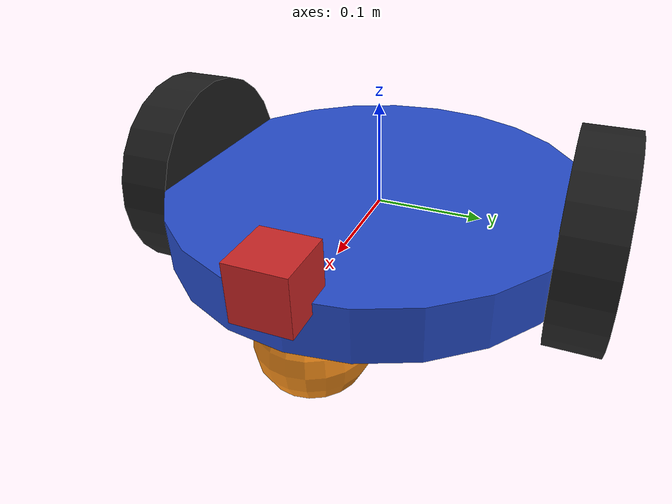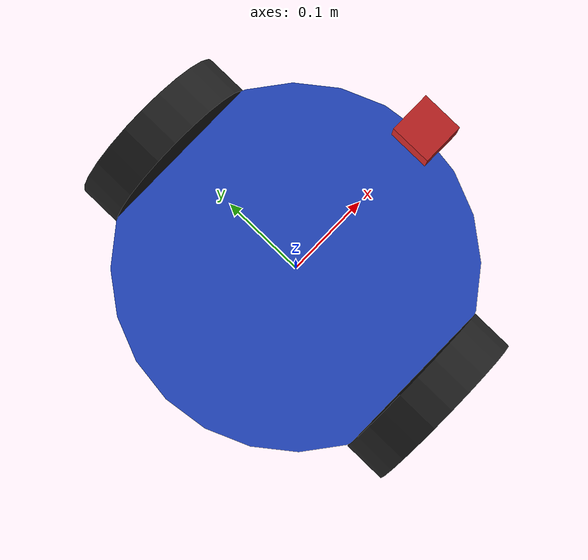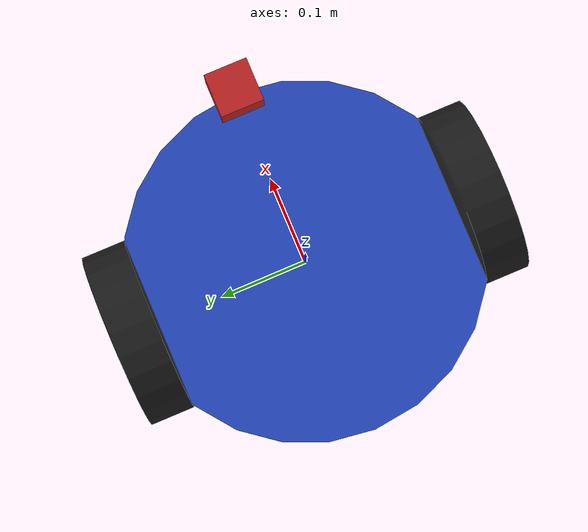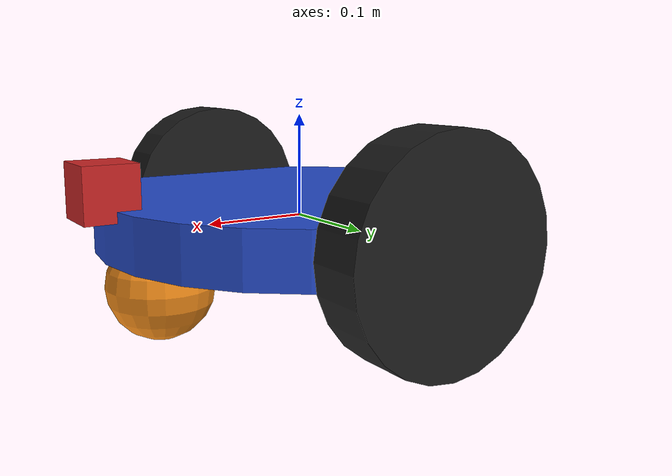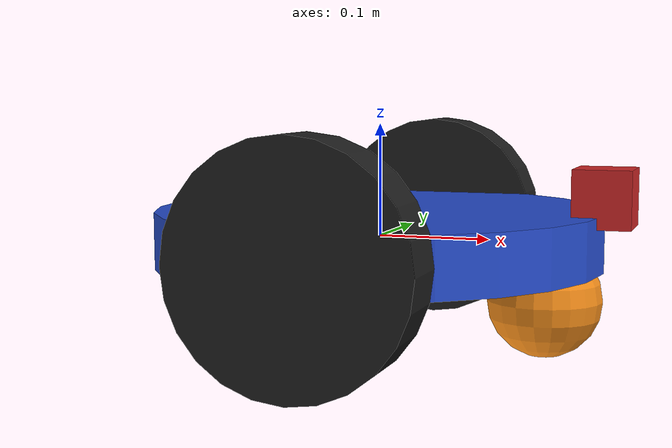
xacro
<?xml version='1.0'?>

<robot name="robot" xmlns:xacro="http://www.ros.org/wiki/xacro">

  <xacro:include filename="$(find auto_robot_description)/urdf/auto_robot.gazebo" />
  <xacro:include filename="$(find auto_robot_description)/urdf/materials.xacro" />
  <xacro:include filename="$(find auto_robot_description)/urdf/xacro_variables.xacro" />

<!--Links Declaration-->

  <link name='chassis'>
    <pose>0 0 0.1 0 0 0</pose>

    <inertial>
      <mass value="10.0"/>
      <origin xyz="0.0 0 0.1" rpy=" 0 0 0"/>

      <cylinder_inertia m="10" r="${chasis_cylinder_radius}" h="${chasis_cylinder_height}"/>

      <inertia
          ixx="0.5" ixy="0" ixz="0"
          iyy="1.0" iyz="0"
          izz="0.1"
      />
    </inertial>

    <collision name='collision'>
      <geometry>
        <cylinder radius="${chasis_cylinder_radius}" length="${chasis_cylinder_height}"/>
      </geometry>
    </collision>

    <visual name='chassis_visual'>
      <origin xyz="0 0 0" rpy=" 0 0 0"/>
      <geometry>
        <cylinder radius="${chasis_cylinder_radius}" length="${chasis_cylinder_height}"/>
      </geometry>
      <material name="blue"/>
    </visual>

    <collision name='caster_collision'>
      <origin xyz="${chasis_caster_x} ${chasis_caster_y} ${chasis_caster_z}" rpy=" ${chasis_caster_r} ${chasis_caster_p} ${chasis_caster_ya}"/>
      <geometry>
        <sphere radius="${chasis_caster_radius}"/>
      </geometry>
      <surface>
        <friction>
          <ode>
            <mu>0</mu>
            <mu2>0</mu2>
            <slip1>1.0</slip1>
            <slip2>1.0</slip2>
          </ode>
        </friction>
      </surface>
    </collision>

    <visual name='caster_visual'>
      <origin xyz="${chasis_caster_x} ${chasis_caster_y} ${chasis_caster_z}" rpy=" ${chasis_caster_r} ${chasis_caster_p} ${chasis_caster_ya}"/>
      <geometry>
        <sphere radius="${chasis_caster_radius}"/>
      </geometry>
      <material name="orange"/>
    </visual>

    <collision name='caster_collision2'>
      <origin xyz="${chasis_caster2_x} ${chasis_caster2_y} ${chasis_caster2_z}" rpy=" ${chasis_caster2_r} ${chasis_caster2_p} ${chasis_caster2_ya}"/>
      <geometry>
        <sphere radius="${chasis_caster_radius}"/>
      </geometry>
      <surface>
        <friction>
          <ode>
            <mu>0</mu>
            <mu2>0</mu2>
            <slip1>1.0</slip1>
            <slip2>1.0</slip2>
          </ode>
        </friction>
      </surface>
    </collision>

    <visual name='caster2_visual'>
      <origin xyz="${chasis_caster2_x} ${chasis_caster2_y} ${chasis_caster2_z}" rpy=" ${chasis_caster2_r} ${chasis_caster2_p} ${chasis_caster2_ya}"/>
      <geometry>
        <sphere radius="${chasis_caster_radius}"/>
      </geometry>
      <material name="orange"/>
    </visual>
  </link>

  <link name="left_wheel">
    <!--origin xyz="0.1 0.13 0.1" rpy="0 1.5707 1.5707"/-->
    <collision name="collision">
      <origin xyz="${wheel_x} ${wheel_y} ${wheel_z}" rpy="${wheel_r} ${wheel_p} ${wheel_ya}"/>
      <geometry>
        <cylinder radius="${wheel_cylinder_radius}" length="${wheel_cylinder_height}"/>
      </geometry>
    </collision>
    <visual name="left_wheel_visual">
      <origin xyz="${wheel_x} ${wheel_y} ${wheel_z}" rpy="${wheel_r} ${wheel_p} ${wheel_ya}"/>
      <geometry>
        <cylinder radius="${wheel_cylinder_radius}" length="${wheel_cylinder_height}"/>
      </geometry>
      <material name="black"/>
    </visual>
    <inertial>
      <origin xyz="${wheel_x} ${wheel_y} ${wheel_z}" rpy="${wheel_r} ${wheel_p} ${wheel_ya}"/>
      <mass value="5"/>
      <cylinder_inertia m="5" r="${wheel_cylinder_radius}" h="${wheel_cylinder_height}"/>
      <inertia
        ixx="1.0" ixy="0.0" ixz="0.0"
        iyy="1.0" iyz="0.0"
        izz="1.0"/>
    </inertial>
  </link>

  <link name="right_wheel">
    <collision name="collision">
      <origin xyz="${wheel_x} ${wheel_y} ${wheel_z}" rpy="${wheel_r} ${wheel_p} ${wheel_ya}"/>
      <geometry>
        <cylinder radius="${wheel_cylinder_radius}" length="${wheel_cylinder_height}"/>
      </geometry>
    </collision>
    <visual name="right_wheel_visual">
      <origin xyz="${wheel_x} ${wheel_y} ${wheel_z}" rpy="${wheel_r} ${wheel_p} ${wheel_ya}"/>
      <geometry>
        <cylinder radius="${wheel_cylinder_radius}" length="${wheel_cylinder_height}"/>
      </geometry>
      <material name="black"/>
    </visual>
    <inertial>
      <origin xyz="${wheel_x} ${wheel_y} ${wheel_z}" rpy="${wheel_r} ${wheel_p} ${wheel_ya}"/>
      <mass value="5"/>
      <cylinder_inertia m="5" r="${wheel_cylinder_radius}" h="${wheel_cylinder_height}"/>
      <inertia
        ixx="1.0" ixy="0.0" ixz="0.0"
        iyy="1.0" iyz="0.0"
        izz="1.0"/>
    </inertial>
  </link>

  <!-- Camera -->
  <link name="camera_link">
    <collision>
      <origin xyz="0 0 0" rpy="0 0 0"/>
      <geometry>
    <box size="${camera_link} ${camera_link} ${camera_link}"/>
      </geometry>
    </collision>

    <visual>
      <origin xyz="0 0 0" rpy="0 0 0"/>
      <geometry>
       <box size="${camera_link} ${camera_link} ${camera_link}"/>
      </geometry>
      <material name="red"/>
    </visual>

    <inertial>
      <mass value="1e-5" />
      <origin xyz="0 0 0" rpy="0 0 0"/>
      <inertia ixx="1e-6" ixy="0" ixz="0" iyy="1e-6" iyz="0" izz="1e-6" />
    </inertial>
  </link>

<!--Joint Declaration-->

  <joint type="continuous" name="left_wheel_hinge">
    <origin xyz="${left_wheel_x} ${left_wheel_y} ${left_wheel_z}" rpy="0 0 0"/>
    <child link="left_wheel"/>
    <parent link="chassis"/>
    <axis xyz="0 1 0" rpy="0 0 0"/>
    <limit effort="100" velocity="100"/>
    <joint_properties damping="0.0" friction="0.0"/>
  </joint>

  <joint type="continuous" name="right_wheel_hinge">
    <origin xyz="${right_wheel_x} ${right_wheel_y} ${right_wheel_z}" rpy="0 0 0"/>
    <child link="right_wheel"/>
    <parent link="chassis"/>
    <axis xyz="0 1 0" rpy="0 0 0"/>
    <limit effort="100" velocity="100"/>
    <joint_properties damping="0.0" friction="0.0"/>
  </joint>

  <joint type="fixed" name="camera_joint">
    <axis xyz="0 0.05 0" />
    <origin xyz="0.2 0 0.04" rpy="0 0 0"/>
    <parent link="chassis"/>
    <child link="camera_link"/>
  </joint>

</robot>

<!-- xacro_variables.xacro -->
<robot name="robot" xmlns:xacro="http://www.ros.org/wiki/xacro">

<!--Xacro variable declaration-->
  <xacro:property name="camera_link" value="0.05" />

<!--Dimentions-->

  <!--Chasis_cylinder-->
  <xacro:property name="chasis_cylinder_radius" value="0.2" />
  <xacro:property name="chasis_cylinder_height" value="0.05" />

  <!--Chasis_caster-->
  <xacro:property name="chasis_caster_radius" value="0.05" />

  <!--Wheel_cylinder-->
  <xacro:property name="wheel_cylinder_radius" value="0.1" />
  <xacro:property name="wheel_cylinder_height" value="0.05" />

<!--Positions-->
  <!--Chasis_cylinder-->
  <xacro:property name="chasis_cylinder_x" value="0" />
  <xacro:property name="chasis_cylinder_y" value="0" />
  <xacro:property name="chasis_cylinder_z" value="0.1" />

  <xacro:property name="chasis_cylinder_r" value="0" />
  <xacro:property name="chasis_cylinder_p" value="0" />
  <xacro:property name="chasis_cylinder_ya" value="0" />

  <!--Chasis_caster-->
  <xacro:property name="chasis_caster_x" value="-0.15" />
  <xacro:property name="chasis_caster_y" value="0" />
  <xacro:property name="chasis_caster_z" value="-0.05" />

  <xacro:property name="chasis_caster_r" value="0" />
  <xacro:property name="chasis_caster_p" value="0" />
  <xacro:property name="chasis_caster_ya" value="0" />

  <xacro:property name="chasis_caster2_x" value="0.15" />
  <xacro:property name="chasis_caster2_y" value="0" />
  <xacro:property name="chasis_caster2_z" value="-0.05" />

  <xacro:property name="chasis_caster2_r" value="0" />
  <xacro:property name="chasis_caster2_p" value="0" />
  <xacro:property name="chasis_caster2_ya" value="0" />

  <!--Wheel-->
  <xacro:property name="wheel_x" value="0" />
  <xacro:property name="wheel_y" value="0" />
  <xacro:property name="wheel_z" value="0" />

  <xacro:property name="wheel_r" value="0" />
  <xacro:property name="wheel_p" value="1.5707" />
  <xacro:property name="wheel_ya" value="1.5707" />

<!--Joint variables-->

  <xacro:property name="right_wheel_x" value="0.0" />
  <xacro:property name="right_wheel_y" value="0.20" />
  <xacro:property name="right_wheel_z" value="0" />

  <xacro:property name="left_wheel_x" value="0" />
  <xacro:property name="left_wheel_y" value="-0.20" />
  <xacro:property name="left_wheel_z" value="0" />

</robot>
